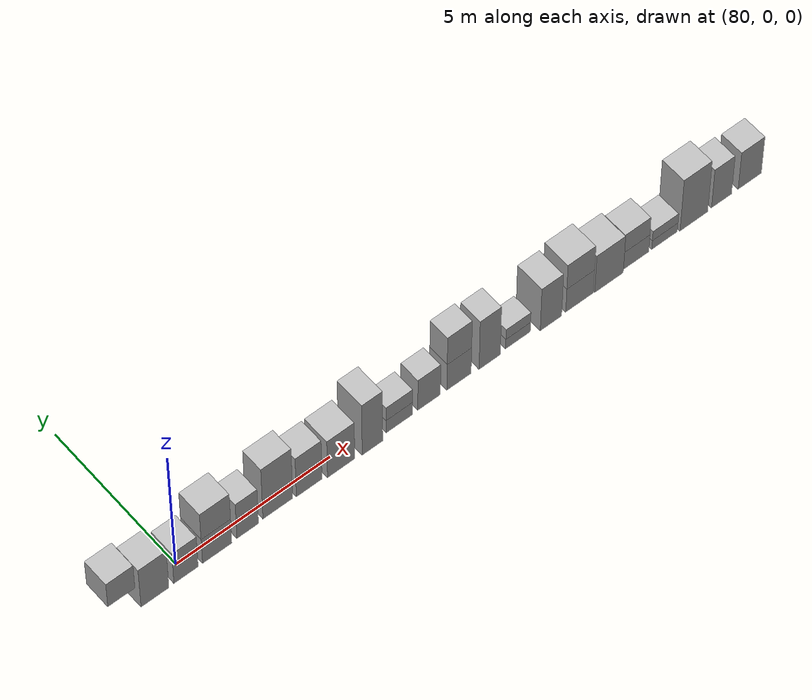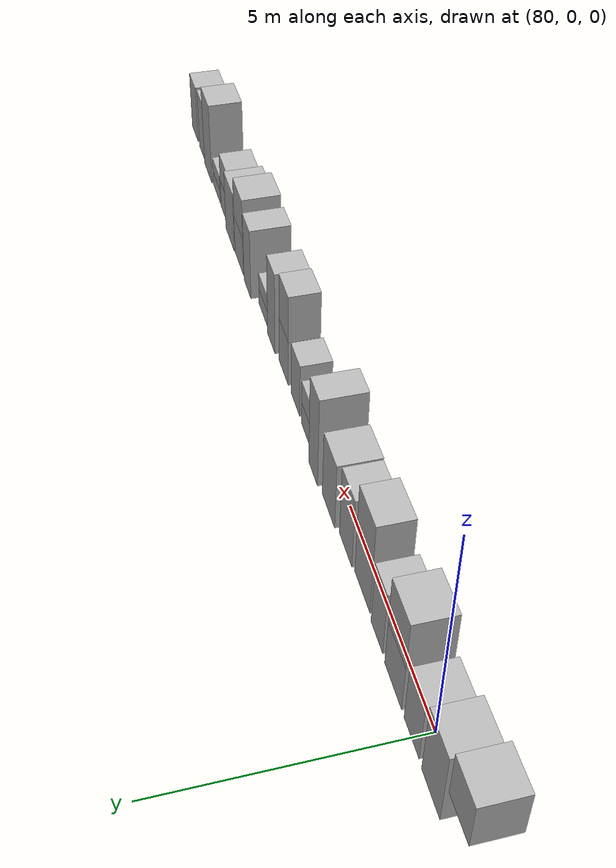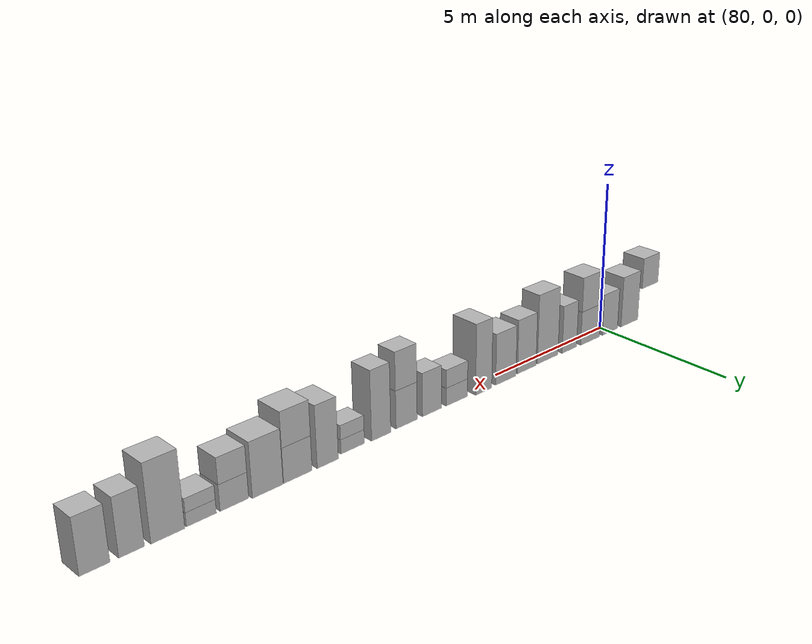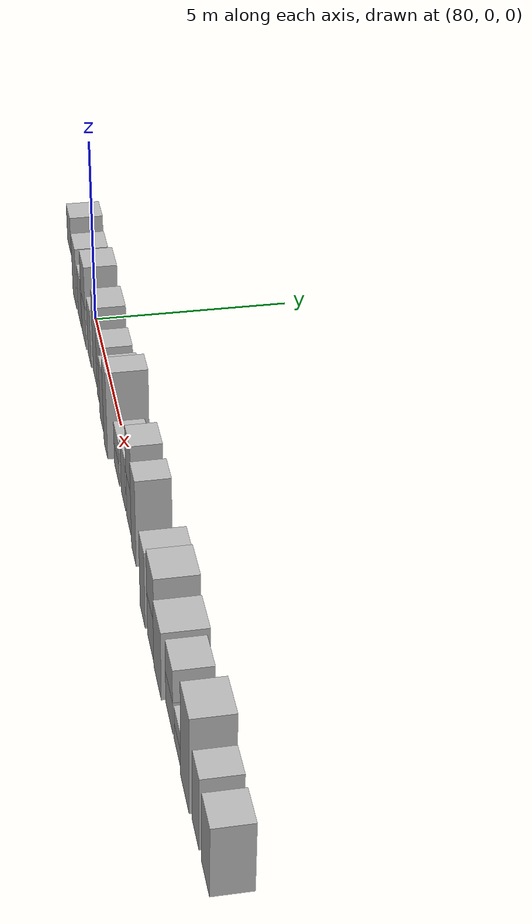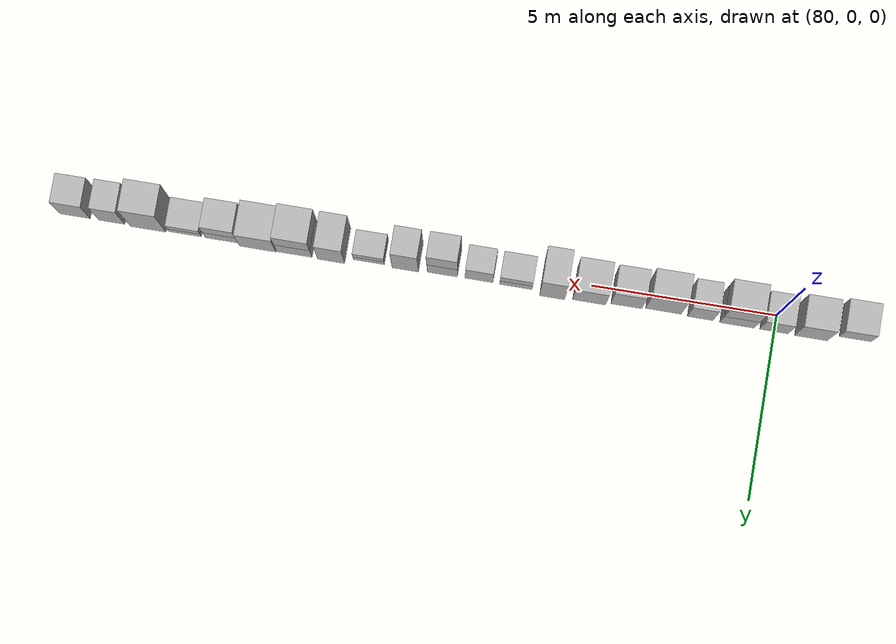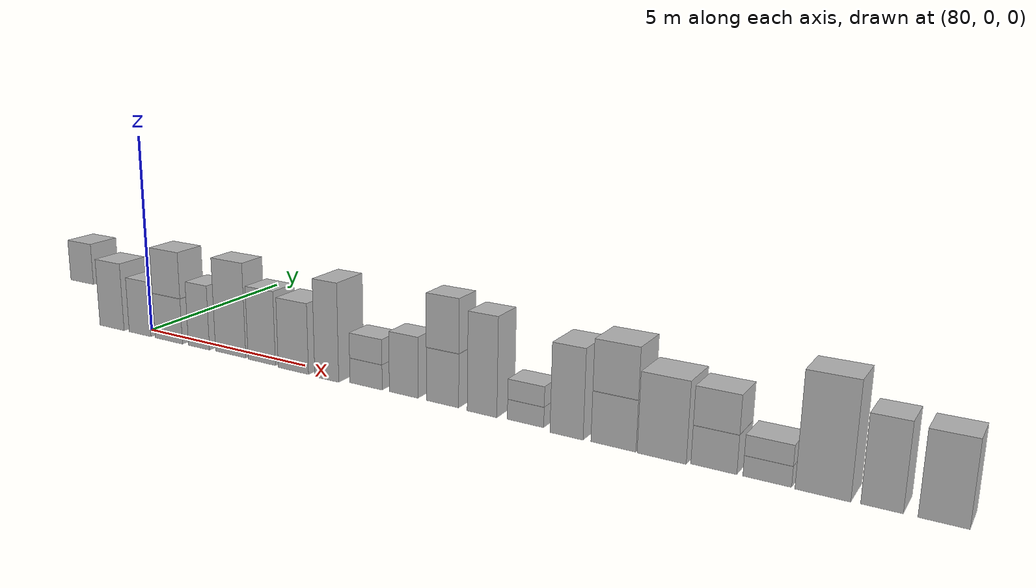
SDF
<sdf version="1.5">
 <world name="default">
  <model name="ground_plane">
   <static>true</static>
   <link name="link">
    <collision name="collision">
     <geometry><plane><normal>0 0 1</normal><size>250 250</size></plane></geometry>
     <surface><friction><ode><mu>1</mu><mu2>1</mu2></ode></friction></surface>
    </collision>
    <visual name="grass">
     <cast_shadows>false</cast_shadows>
     <geometry><mesh><uri>file://grass_plane/meshes/grass_plane.dae</uri></mesh></geometry>
    </visual>
   </link>
  </model>
  <model name="Cardboard_box_top_78">
   <link name="link_0">
    <pose>78 0 1.07898694744 0 0 0</pose>
    <inertial>
     <mass>1</mass>
     <inertia>
      <ixx>0.166667</ixx>
      <ixy>0</ixy>
      <ixz>0</ixz>
      <iyy>0.166667</iyy>
      <iyz>0</iyz>
      <izz>0.166667</izz>
     </inertia>
    </inertial>
    <collision name="collision">
     <geometry>
      <mesh>
       <uri>model://Cardboard_box/meshes/cardboard_box.dae</uri>
       <scale>2.14255924614 2.17342020548 2.69746736859</scale>
      </mesh>
     </geometry>
    </collision>
    <visual name="visual">
     <geometry>
      <mesh>
       <uri>model://Cardboard_box/meshes/cardboard_box.dae</uri>
       <scale>2.14255924614 2.17342020548 2.69746736859</scale>
      </mesh>
     </geometry>
    </visual>
   </link>
   <static>1</static>
  </model>
  <model name="Cardboard_box_79">
   <link name="link_0">
    <pose>79 0 0 0 0 0</pose>
    <inertial>
     <mass>1</mass>
     <inertia>
      <ixx>0.166667</ixx>
      <ixy>0</ixy>
      <ixz>0</ixz>
      <iyy>0.166667</iyy>
      <iyz>0</iyz>
      <izz>0.166667</izz>
     </inertia>
    </inertial>
    <collision name="collision">
     <geometry>
      <mesh>
       <uri>model://Cardboard_box/meshes/cardboard_box.dae</uri>
       <scale>2.2326435882 2.18153163015 4.46802949977</scale>
      </mesh>
     </geometry>
    </collision>
    <visual name="visual">
     <geometry>
      <mesh>
       <uri>model://Cardboard_box/meshes/cardboard_box.dae</uri>
       <scale>2.2326435882 2.18153163015 4.46802949977</scale>
      </mesh>
     </geometry>
    </visual>
   </link>
   <static>1</static>
  </model>
  <model name="Cardboard_box_80">
   <link name="link_0">
    <pose>80 0 0 0 0 0</pose>
    <inertial>
     <mass>1</mass>
     <inertia>
      <ixx>0.166667</ixx>
      <ixy>0</ixy>
      <ixz>0</ixz>
      <iyy>0.166667</iyy>
      <iyz>0</iyz>
      <izz>0.166667</izz>
     </inertia>
    </inertial>
    <collision name="collision">
     <geometry>
      <mesh>
       <uri>model://Cardboard_box/meshes/cardboard_box.dae</uri>
       <scale>1.95039843024 2.10777737286 3.61740042133</scale>
      </mesh>
     </geometry>
    </collision>
    <visual name="visual">
     <geometry>
      <mesh>
       <uri>model://Cardboard_box/meshes/cardboard_box.dae</uri>
       <scale>1.95039843024 2.10777737286 3.61740042133</scale>
      </mesh>
     </geometry>
    </visual>
   </link>
   <static>1</static>
  </model>
  <model name="Cardboard_box_81">
   <link name="link_0">
    <pose>81 0 0 0 0 0</pose>
    <inertial>
     <mass>1</mass>
     <inertia>
      <ixx>0.166667</ixx>
      <ixy>0</ixy>
      <ixz>0</ixz>
      <iyy>0.166667</iyy>
      <iyz>0</iyz>
      <izz>0.166667</izz>
     </inertia>
    </inertial>
    <collision name="collision">
     <geometry>
      <mesh>
       <uri>model://Cardboard_box/meshes/cardboard_box.dae</uri>
       <scale>2.36974217929 2.093422849 2.93915410244</scale>
      </mesh>
     </geometry>
    </collision>
    <visual name="visual">
     <geometry>
      <mesh>
       <uri>model://Cardboard_box/meshes/cardboard_box.dae</uri>
       <scale>2.36974217929 2.093422849 2.93915410244</scale>
      </mesh>
     </geometry>
    </visual>
   </link>
   <static>1</static>
  </model>
  <model name="Cardboard_box_top_81">
   <link name="link_0">
    <pose>81 0 1.17566164098 0 0 0</pose>
    <inertial>
     <mass>1</mass>
     <inertia>
      <ixx>0.166667</ixx>
      <ixy>0</ixy>
      <ixz>0</ixz>
      <iyy>0.166667</iyy>
      <iyz>0</iyz>
      <izz>0.166667</izz>
     </inertia>
    </inertial>
    <collision name="collision">
     <geometry>
      <mesh>
       <uri>model://Cardboard_box/meshes/cardboard_box.dae</uri>
       <scale>2.36974217929 2.093422849 2.93915410244</scale>
      </mesh>
     </geometry>
    </collision>
    <visual name="visual">
     <geometry>
      <mesh>
       <uri>model://Cardboard_box/meshes/cardboard_box.dae</uri>
       <scale>2.36974217929 2.093422849 2.93915410244</scale>
      </mesh>
     </geometry>
    </visual>
   </link>
   <static>1</static>
  </model>
  <model name="Cardboard_box_82">
   <link name="link_0">
    <pose>82 0 0 0 0 0</pose>
    <inertial>
     <mass>1</mass>
     <inertia>
      <ixx>0.166667</ixx>
      <ixy>0</ixy>
      <ixz>0</ixz>
      <iyy>0.166667</iyy>
      <iyz>0</iyz>
      <izz>0.166667</izz>
     </inertia>
    </inertial>
    <collision name="collision">
     <geometry>
      <mesh>
       <uri>model://Cardboard_box/meshes/cardboard_box.dae</uri>
       <scale>1.75667986842 1.98238672828 4.1061258938</scale>
      </mesh>
     </geometry>
    </collision>
    <visual name="visual">
     <geometry>
      <mesh>
       <uri>model://Cardboard_box/meshes/cardboard_box.dae</uri>
       <scale>1.75667986842 1.98238672828 4.1061258938</scale>
      </mesh>
     </geometry>
    </visual>
   </link>
   <static>1</static>
  </model>
  <model name="Cardboard_box_83">
   <link name="link_0">
    <pose>83 0 0 0 0 0</pose>
    <inertial>
     <mass>1</mass>
     <inertia>
      <ixx>0.166667</ixx>
      <ixy>0</ixy>
      <ixz>0</ixz>
      <iyy>0.166667</iyy>
      <iyz>0</iyz>
      <izz>0.166667</izz>
     </inertia>
    </inertial>
    <collision name="collision">
     <geometry>
      <mesh>
       <uri>model://Cardboard_box/meshes/cardboard_box.dae</uri>
       <scale>2.43775560646 1.8254369166 5.91614131725</scale>
      </mesh>
     </geometry>
    </collision>
    <visual name="visual">
     <geometry>
      <mesh>
       <uri>model://Cardboard_box/meshes/cardboard_box.dae</uri>
       <scale>2.43775560646 1.8254369166 5.91614131725</scale>
      </mesh>
     </geometry>
    </visual>
   </link>
   <static>1</static>
  </model>
  <model name="Cardboard_box_84">
   <link name="link_0">
    <pose>84 0 0 0 0 0</pose>
    <inertial>
     <mass>1</mass>
     <inertia>
      <ixx>0.166667</ixx>
      <ixy>0</ixy>
      <ixz>0</ixz>
      <iyy>0.166667</iyy>
      <iyz>0</iyz>
      <izz>0.166667</izz>
     </inertia>
    </inertial>
    <collision name="collision">
     <geometry>
      <mesh>
       <uri>model://Cardboard_box/meshes/cardboard_box.dae</uri>
       <scale>2.11593108786 1.9586876807 4.5648377912</scale>
      </mesh>
     </geometry>
    </collision>
    <visual name="visual">
     <geometry>
      <mesh>
       <uri>model://Cardboard_box/meshes/cardboard_box.dae</uri>
       <scale>2.11593108786 1.9586876807 4.5648377912</scale>
      </mesh>
     </geometry>
    </visual>
   </link>
   <static>1</static>
  </model>
  <model name="Cardboard_box_85">
   <link name="link_0">
    <pose>85 0 0 0 0 0</pose>
    <inertial>
     <mass>1</mass>
     <inertia>
      <ixx>0.166667</ixx>
      <ixy>0</ixy>
      <ixz>0</ixz>
      <iyy>0.166667</iyy>
      <iyz>0</iyz>
      <izz>0.166667</izz>
     </inertia>
    </inertial>
    <collision name="collision">
     <geometry>
      <mesh>
       <uri>model://Cardboard_box/meshes/cardboard_box.dae</uri>
       <scale>2.25009937896 2.25125207744 4.28736987509</scale>
      </mesh>
     </geometry>
    </collision>
    <visual name="visual">
     <geometry>
      <mesh>
       <uri>model://Cardboard_box/meshes/cardboard_box.dae</uri>
       <scale>2.25009937896 2.25125207744 4.28736987509</scale>
      </mesh>
     </geometry>
    </visual>
   </link>
   <static>1</static>
  </model>
  <model name="Cardboard_box_86">
   <link name="link_0">
    <pose>86 0 0 0 0 0</pose>
    <inertial>
     <mass>1</mass>
     <inertia>
      <ixx>0.166667</ixx>
      <ixy>0</ixy>
      <ixz>0</ixz>
      <iyy>0.166667</iyy>
      <iyz>0</iyz>
      <izz>0.166667</izz>
     </inertia>
    </inertial>
    <collision name="collision">
     <geometry>
      <mesh>
       <uri>model://Cardboard_box/meshes/cardboard_box.dae</uri>
       <scale>1.71441155736 2.44897117424 5.86763340239</scale>
      </mesh>
     </geometry>
    </collision>
    <visual name="visual">
     <geometry>
      <mesh>
       <uri>model://Cardboard_box/meshes/cardboard_box.dae</uri>
       <scale>1.71441155736 2.44897117424 5.86763340239</scale>
      </mesh>
     </geometry>
    </visual>
   </link>
   <static>1</static>
  </model>
  <model name="Cardboard_box_87">
   <link name="link_0">
    <pose>87 0 0 0 0 0</pose>
    <inertial>
     <mass>1</mass>
     <inertia>
      <ixx>0.166667</ixx>
      <ixy>0</ixy>
      <ixz>0</ixz>
      <iyy>0.166667</iyy>
      <iyz>0</iyz>
      <izz>0.166667</izz>
     </inertia>
    </inertial>
    <collision name="collision">
     <geometry>
      <mesh>
       <uri>model://Cardboard_box/meshes/cardboard_box.dae</uri>
       <scale>2.22211045201 1.79872430071 1.47911138134</scale>
      </mesh>
     </geometry>
    </collision>
    <visual name="visual">
     <geometry>
      <mesh>
       <uri>model://Cardboard_box/meshes/cardboard_box.dae</uri>
       <scale>2.22211045201 1.79872430071 1.47911138134</scale>
      </mesh>
     </geometry>
    </visual>
   </link>
   <static>1</static>
  </model>
  <model name="Cardboard_box_top_87">
   <link name="link_0">
    <pose>87 0 0.591644552536 0 0 0</pose>
    <inertial>
     <mass>1</mass>
     <inertia>
      <ixx>0.166667</ixx>
      <ixy>0</ixy>
      <ixz>0</ixz>
      <iyy>0.166667</iyy>
      <iyz>0</iyz>
      <izz>0.166667</izz>
     </inertia>
    </inertial>
    <collision name="collision">
     <geometry>
      <mesh>
       <uri>model://Cardboard_box/meshes/cardboard_box.dae</uri>
       <scale>2.22211045201 1.79872430071 1.47911138134</scale>
      </mesh>
     </geometry>
    </collision>
    <visual name="visual">
     <geometry>
      <mesh>
       <uri>model://Cardboard_box/meshes/cardboard_box.dae</uri>
       <scale>2.22211045201 1.79872430071 1.47911138134</scale>
      </mesh>
     </geometry>
    </visual>
   </link>
   <static>1</static>
  </model>
  <model name="Cardboard_box_88">
   <link name="link_0">
    <pose>88 0 0 0 0 0</pose>
    <inertial>
     <mass>1</mass>
     <inertia>
      <ixx>0.166667</ixx>
      <ixy>0</ixy>
      <ixz>0</ixz>
      <iyy>0.166667</iyy>
      <iyz>0</iyz>
      <izz>0.166667</izz>
     </inertia>
    </inertial>
    <collision name="collision">
     <geometry>
      <mesh>
       <uri>model://Cardboard_box/meshes/cardboard_box.dae</uri>
       <scale>1.90141711503 1.7338263104 3.52044692206</scale>
      </mesh>
     </geometry>
    </collision>
    <visual name="visual">
     <geometry>
      <mesh>
       <uri>model://Cardboard_box/meshes/cardboard_box.dae</uri>
       <scale>1.90141711503 1.7338263104 3.52044692206</scale>
      </mesh>
     </geometry>
    </visual>
   </link>
   <static>1</static>
  </model>
  <model name="Cardboard_box_89">
   <link name="link_0">
    <pose>89 0 0 0 0 0</pose>
    <inertial>
     <mass>1</mass>
     <inertia>
      <ixx>0.166667</ixx>
      <ixy>0</ixy>
      <ixz>0</ixz>
      <iyy>0.166667</iyy>
      <iyz>0</iyz>
      <izz>0.166667</izz>
     </inertia>
    </inertial>
    <collision name="collision">
     <geometry>
      <mesh>
       <uri>model://Cardboard_box/meshes/cardboard_box.dae</uri>
       <scale>2.05296024159 1.75421210313 3.04506289172</scale>
      </mesh>
     </geometry>
    </collision>
    <visual name="visual">
     <geometry>
      <mesh>
       <uri>model://Cardboard_box/meshes/cardboard_box.dae</uri>
       <scale>2.05296024159 1.75421210313 3.04506289172</scale>
      </mesh>
     </geometry>
    </visual>
   </link>
   <static>1</static>
  </model>
  <model name="Cardboard_box_top_89">
   <link name="link_0">
    <pose>89 0 1.21802515669 0 0 0</pose>
    <inertial>
     <mass>1</mass>
     <inertia>
      <ixx>0.166667</ixx>
      <ixy>0</ixy>
      <ixz>0</ixz>
      <iyy>0.166667</iyy>
      <iyz>0</iyz>
      <izz>0.166667</izz>
     </inertia>
    </inertial>
    <collision name="collision">
     <geometry>
      <mesh>
       <uri>model://Cardboard_box/meshes/cardboard_box.dae</uri>
       <scale>2.05296024159 1.75421210313 3.04506289172</scale>
      </mesh>
     </geometry>
    </collision>
    <visual name="visual">
     <geometry>
      <mesh>
       <uri>model://Cardboard_box/meshes/cardboard_box.dae</uri>
       <scale>2.05296024159 1.75421210313 3.04506289172</scale>
      </mesh>
     </geometry>
    </visual>
   </link>
   <static>1</static>
  </model>
  <model name="Cardboard_box_90">
   <link name="link_0">
    <pose>90 0 0 0 0 0</pose>
    <inertial>
     <mass>1</mass>
     <inertia>
      <ixx>0.166667</ixx>
      <ixy>0</ixy>
      <ixz>0</ixz>
      <iyy>0.166667</iyy>
      <iyz>0</iyz>
      <izz>0.166667</izz>
     </inertia>
    </inertial>
    <collision name="collision">
     <geometry>
      <mesh>
       <uri>model://Cardboard_box/meshes/cardboard_box.dae</uri>
       <scale>1.80304570609 1.94861086133 5.56388474406</scale>
      </mesh>
     </geometry>
    </collision>
    <visual name="visual">
     <geometry>
      <mesh>
       <uri>model://Cardboard_box/meshes/cardboard_box.dae</uri>
       <scale>1.80304570609 1.94861086133 5.56388474406</scale>
      </mesh>
     </geometry>
    </visual>
   </link>
   <static>1</static>
  </model>
  <model name="Cardboard_box_91">
   <link name="link_0">
    <pose>91 0 0 0 0 0</pose>
    <inertial>
     <mass>1</mass>
     <inertia>
      <ixx>0.166667</ixx>
      <ixy>0</ixy>
      <ixz>0</ixz>
      <iyy>0.166667</iyy>
      <iyz>0</iyz>
      <izz>0.166667</izz>
     </inertia>
    </inertial>
    <collision name="collision">
     <geometry>
      <mesh>
       <uri>model://Cardboard_box/meshes/cardboard_box.dae</uri>
       <scale>2.12102508458 1.70218963493 1.11529470921</scale>
      </mesh>
     </geometry>
    </collision>
    <visual name="visual">
     <geometry>
      <mesh>
       <uri>model://Cardboard_box/meshes/cardboard_box.dae</uri>
       <scale>2.12102508458 1.70218963493 1.11529470921</scale>
      </mesh>
     </geometry>
    </visual>
   </link>
   <static>1</static>
  </model>
  <model name="Cardboard_box_top_91">
   <link name="link_0">
    <pose>91 0 0.446117883682 0 0 0</pose>
    <inertial>
     <mass>1</mass>
     <inertia>
      <ixx>0.166667</ixx>
      <ixy>0</ixy>
      <ixz>0</ixz>
      <iyy>0.166667</iyy>
      <iyz>0</iyz>
      <izz>0.166667</izz>
     </inertia>
    </inertial>
    <collision name="collision">
     <geometry>
      <mesh>
       <uri>model://Cardboard_box/meshes/cardboard_box.dae</uri>
       <scale>2.12102508458 1.70218963493 1.11529470921</scale>
      </mesh>
     </geometry>
    </collision>
    <visual name="visual">
     <geometry>
      <mesh>
       <uri>model://Cardboard_box/meshes/cardboard_box.dae</uri>
       <scale>2.12102508458 1.70218963493 1.11529470921</scale>
      </mesh>
     </geometry>
    </visual>
   </link>
   <static>1</static>
  </model>
  <model name="Cardboard_box_92">
   <link name="link_0">
    <pose>92 0 0 0 0 0</pose>
    <inertial>
     <mass>1</mass>
     <inertia>
      <ixx>0.166667</ixx>
      <ixy>0</ixy>
      <ixz>0</ixz>
      <iyy>0.166667</iyy>
      <iyz>0</iyz>
      <izz>0.166667</izz>
     </inertia>
    </inertial>
    <collision name="collision">
     <geometry>
      <mesh>
       <uri>model://Cardboard_box/meshes/cardboard_box.dae</uri>
       <scale>1.8439879319 2.43263202121 4.83993912961</scale>
      </mesh>
     </geometry>
    </collision>
    <visual name="visual">
     <geometry>
      <mesh>
       <uri>model://Cardboard_box/meshes/cardboard_box.dae</uri>
       <scale>1.8439879319 2.43263202121 4.83993912961</scale>
      </mesh>
     </geometry>
    </visual>
   </link>
   <static>1</static>
  </model>
  <model name="Cardboard_box_93">
   <link name="link_0">
    <pose>93 0 0 0 0 0</pose>
    <inertial>
     <mass>1</mass>
     <inertia>
      <ixx>0.166667</ixx>
      <ixy>0</ixy>
      <ixz>0</ixz>
      <iyy>0.166667</iyy>
      <iyz>0</iyz>
      <izz>0.166667</izz>
     </inertia>
    </inertial>
    <collision name="collision">
     <geometry>
      <mesh>
       <uri>model://Cardboard_box/meshes/cardboard_box.dae</uri>
       <scale>2.39714300649 2.32329136097 2.69508065582</scale>
      </mesh>
     </geometry>
    </collision>
    <visual name="visual">
     <geometry>
      <mesh>
       <uri>model://Cardboard_box/meshes/cardboard_box.dae</uri>
       <scale>2.39714300649 2.32329136097 2.69508065582</scale>
      </mesh>
     </geometry>
    </visual>
   </link>
   <static>1</static>
  </model>
  <model name="Cardboard_box_top_93">
   <link name="link_0">
    <pose>93 0 1.07803226233 0 0 0</pose>
    <inertial>
     <mass>1</mass>
     <inertia>
      <ixx>0.166667</ixx>
      <ixy>0</ixy>
      <ixz>0</ixz>
      <iyy>0.166667</iyy>
      <iyz>0</iyz>
      <izz>0.166667</izz>
     </inertia>
    </inertial>
    <collision name="collision">
     <geometry>
      <mesh>
       <uri>model://Cardboard_box/meshes/cardboard_box.dae</uri>
       <scale>2.39714300649 2.32329136097 2.69508065582</scale>
      </mesh>
     </geometry>
    </collision>
    <visual name="visual">
     <geometry>
      <mesh>
       <uri>model://Cardboard_box/meshes/cardboard_box.dae</uri>
       <scale>2.39714300649 2.32329136097 2.69508065582</scale>
      </mesh>
     </geometry>
    </visual>
   </link>
   <static>1</static>
  </model>
  <model name="Cardboard_box_94">
   <link name="link_0">
    <pose>94 0 0 0 0 0</pose>
    <inertial>
     <mass>1</mass>
     <inertia>
      <ixx>0.166667</ixx>
      <ixy>0</ixy>
      <ixz>0</ixz>
      <iyy>0.166667</iyy>
      <iyz>0</iyz>
      <izz>0.166667</izz>
     </inertia>
    </inertial>
    <collision name="collision">
     <geometry>
      <mesh>
       <uri>model://Cardboard_box/meshes/cardboard_box.dae</uri>
       <scale>2.48921983136 2.40337745771 4.21579208531</scale>
      </mesh>
     </geometry>
    </collision>
    <visual name="visual">
     <geometry>
      <mesh>
       <uri>model://Cardboard_box/meshes/cardboard_box.dae</uri>
       <scale>2.48921983136 2.40337745771 4.21579208531</scale>
      </mesh>
     </geometry>
    </visual>
   </link>
   <static>1</static>
  </model>
  <model name="Cardboard_box_95">
   <link name="link_0">
    <pose>95 0 0 0 0 0</pose>
    <inertial>
     <mass>1</mass>
     <inertia>
      <ixx>0.166667</ixx>
      <ixy>0</ixy>
      <ixz>0</ixz>
      <iyy>0.166667</iyy>
      <iyz>0</iyz>
      <izz>0.166667</izz>
     </inertia>
    </inertial>
    <collision name="collision">
     <geometry>
      <mesh>
       <uri>model://Cardboard_box/meshes/cardboard_box.dae</uri>
       <scale>2.22859920583 2.02697644198 1.97737011165</scale>
      </mesh>
     </geometry>
    </collision>
    <visual name="visual">
     <geometry>
      <mesh>
       <uri>model://Cardboard_box/meshes/cardboard_box.dae</uri>
       <scale>2.22859920583 2.02697644198 1.97737011165</scale>
      </mesh>
     </geometry>
    </visual>
   </link>
   <static>1</static>
  </model>
  <model name="Cardboard_box_top_95">
   <link name="link_0">
    <pose>95 0 0.790948044661 0 0 0</pose>
    <inertial>
     <mass>1</mass>
     <inertia>
      <ixx>0.166667</ixx>
      <ixy>0</ixy>
      <ixz>0</ixz>
      <iyy>0.166667</iyy>
      <iyz>0</iyz>
      <izz>0.166667</izz>
     </inertia>
    </inertial>
    <collision name="collision">
     <geometry>
      <mesh>
       <uri>model://Cardboard_box/meshes/cardboard_box.dae</uri>
       <scale>2.22859920583 2.02697644198 1.97737011165</scale>
      </mesh>
     </geometry>
    </collision>
    <visual name="visual">
     <geometry>
      <mesh>
       <uri>model://Cardboard_box/meshes/cardboard_box.dae</uri>
       <scale>2.22859920583 2.02697644198 1.97737011165</scale>
      </mesh>
     </geometry>
    </visual>
   </link>
   <static>1</static>
  </model>
  <model name="Cardboard_box_96">
   <link name="link_0">
    <pose>96 0 0 0 0 0</pose>
    <inertial>
     <mass>1</mass>
     <inertia>
      <ixx>0.166667</ixx>
      <ixy>0</ixy>
      <ixz>0</ixz>
      <iyy>0.166667</iyy>
      <iyz>0</iyz>
      <izz>0.166667</izz>
     </inertia>
    </inertial>
    <collision name="collision">
     <geometry>
      <mesh>
       <uri>model://Cardboard_box/meshes/cardboard_box.dae</uri>
       <scale>2.2506728112 2.00082052423 1.03240252658</scale>
      </mesh>
     </geometry>
    </collision>
    <visual name="visual">
     <geometry>
      <mesh>
       <uri>model://Cardboard_box/meshes/cardboard_box.dae</uri>
       <scale>2.2506728112 2.00082052423 1.03240252658</scale>
      </mesh>
     </geometry>
    </visual>
   </link>
   <static>1</static>
  </model>
  <model name="Cardboard_box_top_96">
   <link name="link_0">
    <pose>96 0 0.412961010632 0 0 0</pose>
    <inertial>
     <mass>1</mass>
     <inertia>
      <ixx>0.166667</ixx>
      <ixy>0</ixy>
      <ixz>0</ixz>
      <iyy>0.166667</iyy>
      <iyz>0</iyz>
      <izz>0.166667</izz>
     </inertia>
    </inertial>
    <collision name="collision">
     <geometry>
      <mesh>
       <uri>model://Cardboard_box/meshes/cardboard_box.dae</uri>
       <scale>2.2506728112 2.00082052423 1.03240252658</scale>
      </mesh>
     </geometry>
    </collision>
    <visual name="visual">
     <geometry>
      <mesh>
       <uri>model://Cardboard_box/meshes/cardboard_box.dae</uri>
       <scale>2.2506728112 2.00082052423 1.03240252658</scale>
      </mesh>
     </geometry>
    </visual>
   </link>
   <static>1</static>
  </model>
  <model name="Cardboard_box_97">
   <link name="link_0">
    <pose>97 0 0 0 0 0</pose>
    <inertial>
     <mass>1</mass>
     <inertia>
      <ixx>0.166667</ixx>
      <ixy>0</ixy>
      <ixz>0</ixz>
      <iyy>0.166667</iyy>
      <iyz>0</iyz>
      <izz>0.166667</izz>
     </inertia>
    </inertial>
    <collision name="collision">
     <geometry>
      <mesh>
       <uri>model://Cardboard_box/meshes/cardboard_box.dae</uri>
       <scale>2.45036230772 2.15659209934 5.7686105125</scale>
      </mesh>
     </geometry>
    </collision>
    <visual name="visual">
     <geometry>
      <mesh>
       <uri>model://Cardboard_box/meshes/cardboard_box.dae</uri>
       <scale>2.45036230772 2.15659209934 5.7686105125</scale>
      </mesh>
     </geometry>
    </visual>
   </link>
   <static>1</static>
  </model>
  <model name="Cardboard_box_98">
   <link name="link_0">
    <pose>98 0 0 0 0 0</pose>
    <inertial>
     <mass>1</mass>
     <inertia>
      <ixx>0.166667</ixx>
      <ixy>0</ixy>
      <ixz>0</ixz>
      <iyy>0.166667</iyy>
      <iyz>0</iyz>
      <izz>0.166667</izz>
     </inertia>
    </inertial>
    <collision name="collision">
     <geometry>
      <mesh>
       <uri>model://Cardboard_box/meshes/cardboard_box.dae</uri>
       <scale>1.78377044419 2.00716140045 4.31413817096</scale>
      </mesh>
     </geometry>
    </collision>
    <visual name="visual">
     <geometry>
      <mesh>
       <uri>model://Cardboard_box/meshes/cardboard_box.dae</uri>
       <scale>1.78377044419 2.00716140045 4.31413817096</scale>
      </mesh>
     </geometry>
    </visual>
   </link>
   <static>1</static>
  </model>
  <model name="Cardboard_box_99">
   <link name="link_0">
    <pose>99 0 0 0 0 0</pose>
    <inertial>
     <mass>1</mass>
     <inertia>
      <ixx>0.166667</ixx>
      <ixy>0</ixy>
      <ixz>0</ixz>
      <iyy>0.166667</iyy>
      <iyz>0</iyz>
      <izz>0.166667</izz>
     </inertia>
    </inertial>
    <collision name="collision">
     <geometry>
      <mesh>
       <uri>model://Cardboard_box/meshes/cardboard_box.dae</uri>
       <scale>2.07014068128 2.0020567674 4.13272385946</scale>
      </mesh>
     </geometry>
    </collision>
    <visual name="visual">
     <geometry>
      <mesh>
       <uri>model://Cardboard_box/meshes/cardboard_box.dae</uri>
       <scale>2.07014068128 2.0020567674 4.13272385946</scale>
      </mesh>
     </geometry>
    </visual>
   </link>
   <static>1</static>
  </model>
 </world>
</sdf>
